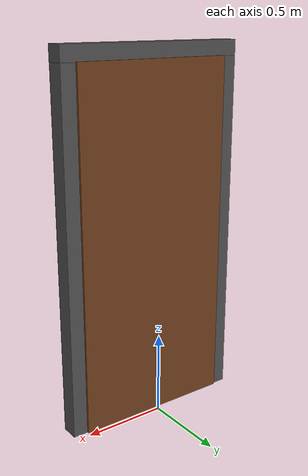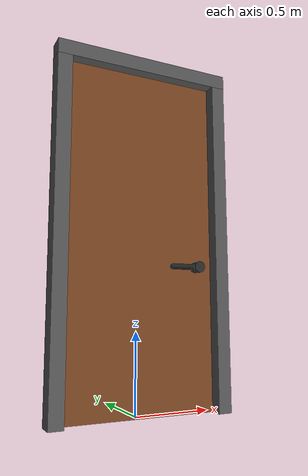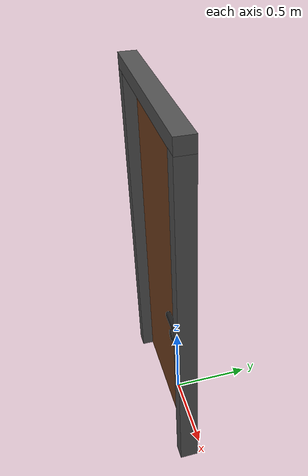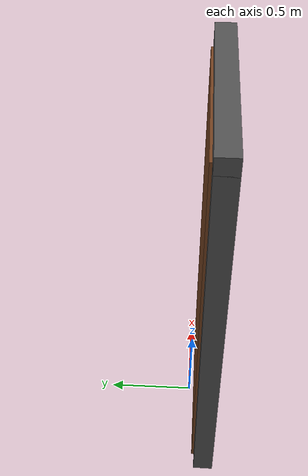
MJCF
<mujoco model="humanoidarena_open_door">
  <compiler angle="radian" autolimits="true"/>
  <default>
    <geom condim="4" friction="0.8 0.02 0.002" solref="0.005 2"/>
  </default>
  <worldbody>
    <body name="door_root">
      <geom name="hinge_post" type="box" pos="-0.527 -0.093 1.067"
            size="0.045 0.055 1.067" rgba="0.32 0.32 0.32 1"/>
      <geom name="latch_post" type="box" pos="0.542 -0.093 1.067"
            size="0.045 0.055 1.067" rgba="0.32 0.32 0.32 1"/>
      <geom name="header" type="box" pos="0.008 -0.093 2.175"
            size="0.580 0.055 0.045" rgba="0.32 0.32 0.32 1"/>

      <body name="leaf" pos="-0.4818004 -0.0241592 0.80106">
        <joint name="leaf_hinge" type="hinge" axis="0 0 1"
               range="0 1.57079632679" limited="true"/>
        <inertial pos="0.48966 -0.0243 0.26660" mass="15.0"
                  diaginertia="5.80 5.10 0.95"/>
        <geom name="leaf_collision" type="box"
              pos="0.48966 -0.0243 0.26660"
              size="0.48966 0.0243 1.06564"
              rgba="0.45 0.25 0.12 1"/>

        <body name="handle" pos="0.866628 -0.077827 0.101401"
              quat="0 0 1 0">
          <joint name="handle_hinge" type="hinge" axis="0 1 0"
                 range="-0.6412635576 0.2844535343" limited="true"
                 frictionloss="0.5"/>
          <inertial pos="0.075 0 0" mass="0.35"
                    diaginertia="0.0004 0.0012 0.0012"/>
          <geom name="handle_hub" type="cylinder" pos="0 0 0"
                quat="0.70710678 0.70710678 0 0"
                size="0.035 0.035" rgba="0.15 0.15 0.15 1"/>
          <geom name="handle_lever" type="capsule"
                fromto="0 0 0 0.18 0 0" size="0.018"
                rgba="0.12 0.12 0.12 1"/>
        </body>
      </body>
    </body>
  </worldbody>
  <contact>
    <exclude name="frame_leaf" body1="door_root" body2="leaf"/>
    <exclude name="frame_handle" body1="door_root" body2="handle"/>
    <exclude name="leaf_handle" body1="leaf" body2="handle"/>
  </contact>
</mujoco>
